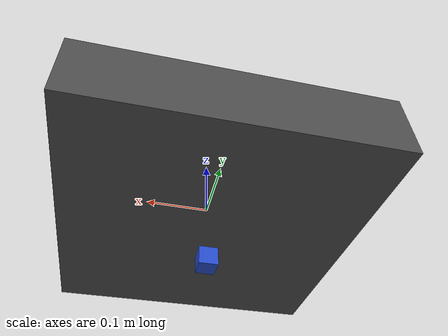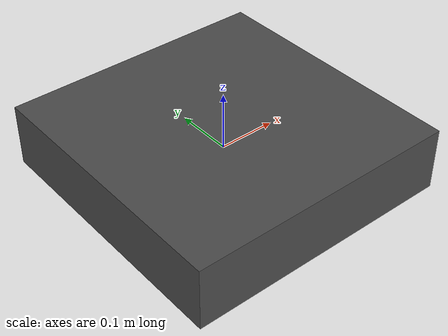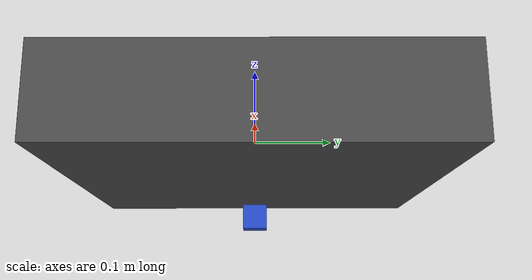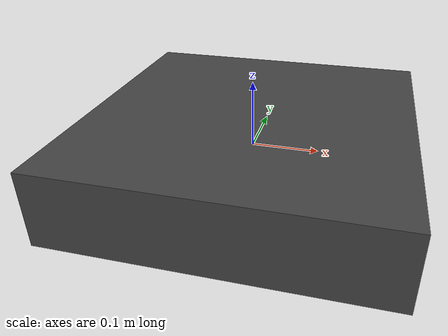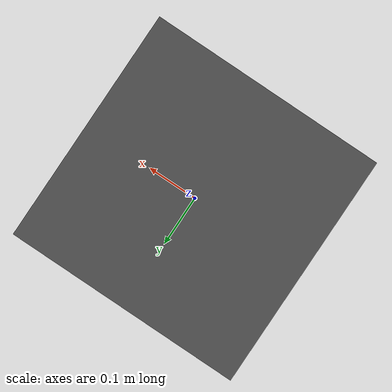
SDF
<?xml version="1.0"?>
<sdf version="1.6">
  <model name="spatial_reasoning_drone">

    <!-- Main quadcopter body -->
    <link name="base_link">
      <pose>0 0 0 0 0 0</pose>
      <inertial>
        <mass>1.5</mass>
        <inertia>
          <ixx>0.0347563</ixx>
          <ixy>0</ixy>
          <ixz>0</ixz>
          <iyy>0.0458929</iyy>
          <iyz>0</iyz>
          <izz>0.0977</izz>
        </inertia>
      </inertial>

      <collision name="collision">
        <geometry>
          <box>
            <size>0.47 0.47 0.11</size>
          </box>
        </geometry>
      </collision>

      <visual name="visual">
        <geometry>
          <box>
            <size>0.47 0.47 0.11</size>
          </box>
        </geometry>
        <material>
          <script>
            <uri>file://media/materials/scripts/gazebo.material</uri>
            <name>Gazebo/DarkGrey</name>
          </script>
        </material>
      </visual>
    </link>

    <!-- Front Camera for Spatial Reasoning -->
    <link name="camera_link">
      <pose>0.2 0 0 0 0 0</pose>
      <inertial>
        <mass>0.1</mass>
        <inertia>
          <ixx>1e-6</ixx>
          <ixy>0</ixy>
          <ixz>0</ixz>
          <iyy>1e-6</iyy>
          <iyz>0</iyz>
          <izz>1e-6</izz>
        </inertia>
      </inertial>

      <collision name="collision">
        <geometry>
          <box>
            <size>0.05 0.05 0.05</size>
          </box>
        </geometry>
      </collision>

      <visual name="visual">
        <geometry>
          <box>
            <size>0.05 0.05 0.05</size>
          </box>
        </geometry>
        <material>
          <script>
            <uri>file://media/materials/scripts/gazebo.material</uri>
            <name>Gazebo/Red</name>
          </script>
        </material>
      </visual>

      <!-- RGB Camera Sensor -->
      <sensor type="camera" name="rgb_camera">
        <update_rate>30.0</update_rate>
        <camera name="head">
          <horizontal_fov>1.3962634</horizontal_fov>
          <image>
            <width>1920</width>
            <height>1080</height>
            <format>R8G8B8</format>
          </image>
          <clip>
            <near>0.02</near>
            <far>300</far>
          </clip>
          <noise>
            <type>gaussian</type>
            <mean>0.0</mean>
            <stddev>0.007</stddev>
          </noise>
        </camera>
        <plugin name="camera_controller" filename="libgazebo_ros_camera.so">
          <alwaysOn>true</alwaysOn>
          <updateRate>0.0</updateRate>
          <cameraName>drone/rgb_camera</cameraName>
          <imageTopicName>image_raw</imageTopicName>
          <cameraInfoTopicName>camera_info</cameraInfoTopicName>
          <frameName>camera_link</frameName>
          <hackBaseline>0.07</hackBaseline>
          <distortionK1>0.0</distortionK1>
          <distortionK2>0.0</distortionK2>
          <distortionK3>0.0</distortionK3>
          <distortionT1>0.0</distortionT1>
          <distortionT2>0.0</distortionT2>
        </plugin>
      </sensor>

      <!-- Depth Camera Sensor -->
      <sensor type="depth" name="depth_camera">
        <update_rate>20.0</update_rate>
        <camera name="depth">
          <horizontal_fov>1.3962634</horizontal_fov>
          <image>
            <width>640</width>
            <height>480</height>
            <format>R8G8B8</format>
          </image>
          <clip>
            <near>0.02</near>
            <far>300</far>
          </clip>
          <noise>
            <type>gaussian</type>
            <mean>0.0</mean>
            <stddev>0.007</stddev>
          </noise>
        </camera>
        <plugin name="depth_camera_controller" filename="libgazebo_ros_openni_kinect.so">
          <baseline>0.2</baseline>
          <alwaysOn>true</alwaysOn>
          <updateRate>0.0</updateRate>
          <cameraName>drone/depth_camera</cameraName>
          <imageTopicName>image_raw</imageTopicName>
          <cameraInfoTopicName>camera_info</cameraInfoTopicName>
          <depthImageTopicName>depth/image_raw</depthImageTopicName>
          <depthImageCameraInfoTopicName>depth/camera_info</depthImageCameraInfoTopicName>
          <pointCloudTopicName>depth/points</pointCloudTopicName>
          <frameName>camera_link</frameName>
          <pointCloudCutoff>0.5</pointCloudCutoff>
          <pointCloudCutoffMax>3.0</pointCloudCutoffMax>
          <distortionK1>0.00000001</distortionK1>
          <distortionK2>0.00000001</distortionK2>
          <distortionK3>0.00000001</distortionK3>
          <distortionT1>0.00000001</distortionT1>
          <distortionT2>0.00000001</distortionT2>
        </plugin>
      </sensor>
    </link>

    <!-- Down-facing Camera for Ground Distance -->
    <link name="down_camera_link">
      <pose>0 0 -0.1 0 1.57 0</pose>
      <inertial>
        <mass>0.05</mass>
        <inertia>
          <ixx>1e-6</ixx>
          <ixy>0</ixy>
          <ixz>0</ixz>
          <iyy>1e-6</iyy>
          <iyz>0</iyz>
          <izz>1e-6</izz>
        </inertia>
      </inertial>

      <collision name="collision">
        <geometry>
          <box>
            <size>0.03 0.03 0.03</size>
          </box>
        </geometry>
      </collision>

      <visual name="visual">
        <geometry>
          <box>
            <size>0.03 0.03 0.03</size>
          </box>
        </geometry>
        <material>
          <script>
            <uri>file://media/materials/scripts/gazebo.material</uri>
            <name>Gazebo/Blue</name>
          </script>
        </material>
      </visual>

      <sensor type="camera" name="down_camera">
        <update_rate>30.0</update_rate>
        <camera name="down">
          <horizontal_fov>1.3962634</horizontal_fov>
          <image>
            <width>640</width>
            <height>480</height>
            <format>R8G8B8</format>
          </image>
          <clip>
            <near>0.02</near>
            <far>300</far>
          </clip>
        </camera>
        <plugin name="down_camera_controller" filename="libgazebo_ros_camera.so">
          <alwaysOn>true</alwaysOn>
          <updateRate>0.0</updateRate>
          <cameraName>drone/down_camera</cameraName>
          <imageTopicName>image_raw</imageTopicName>
          <cameraInfoTopicName>camera_info</cameraInfoTopicName>
          <frameName>down_camera_link</frameName>
        </plugin>
      </sensor>
    </link>

    <!-- IMU Sensor -->
    <link name="imu_link">
      <pose>0 0 0 0 0 0</pose>
      <inertial>
        <mass>0.015</mass>
        <inertia>
          <ixx>1e-6</ixx>
          <ixy>0</ixy>
          <ixz>0</ixz>
          <iyy>1e-6</iyy>
          <iyz>0</iyz>
          <izz>1e-6</izz>
        </inertia>
      </inertial>

      <sensor name="imu_sensor" type="imu">
        <always_on>true</always_on>
        <update_rate>1000</update_rate>
        <visualize>true</visualize>
        <topic>/drone/imu</topic>
        <plugin filename="libgazebo_ros_imu_sensor.so" name="imu_plugin">
          <topicName>/drone/imu</topicName>
          <bodyName>imu_link</bodyName>
          <updateRateHZ>1000.0</updateRateHZ>
          <gaussianNoise>0.0</gaussianNoise>
          <xyzOffset>0 0 0</xyzOffset>
          <rpyOffset>0 0 0</rpyOffset>
          <frameName>imu_link</frameName>
        </plugin>
      </sensor>
    </link>

    <!-- GPS Sensor -->
    <link name="gps_link">
      <pose>0 0 0.1 0 0 0</pose>
      <inertial>
        <mass>0.01</mass>
        <inertia>
          <ixx>1e-6</ixx>
          <ixy>0</ixy>
          <ixz>0</ixz>
          <iyy>1e-6</iyy>
          <iyz>0</iyz>
          <izz>1e-6</izz>
        </inertia>
      </inertial>
    </link>

    <!-- Joints connecting sensors to main body -->
    <joint name="camera_joint" type="fixed">
      <child>camera_link</child>
      <parent>base_link</parent>
    </joint>

    <joint name="down_camera_joint" type="fixed">
      <child>down_camera_link</child>
      <parent>base_link</parent>
    </joint>

    <joint name="imu_joint" type="fixed">
      <child>imu_link</child>
      <parent>base_link</parent>
    </joint>

    <joint name="gps_joint" type="fixed">
      <child>gps_link</child>
      <parent>base_link</parent>
    </joint>

    <!-- Rotor plugins for ArduPilot integration -->
    <plugin name='rotor_0' filename='libgazebo_motor_model.so'>
      <robotNamespace></robotNamespace>
      <jointName>rotor_0_joint</jointName>
      <linkName>rotor_0</linkName>
      <turningDirection>ccw</turningDirection>
      <timeConstantUp>0.0125</timeConstantUp>
      <timeConstantDown>0.025</timeConstantDown>
      <maxRotVelocity>1100</maxRotVelocity>
      <motorConstant>8.54858e-06</motorConstant>
      <momentConstant>0.06</momentConstant>
      <commandSubTopic>/gazebo/command/motor_speed</commandSubTopic>
      <motorNumber>0</motorNumber>
      <rotorDragCoefficient>0.000806428</rotorDragCoefficient>
      <rollingMomentCoefficient>1e-06</rollingMomentCoefficient>
      <motorSpeedPubTopic>/motor_speed/0</motorSpeedPubTopic>
      <rotorVelocitySlowdownSim>10</rotorVelocitySlowdownSim>
    </plugin>

    <!-- ArduPilot SITL Plugin -->
    <plugin name='arducopter_plugin' filename='libArduPilotPlugin.so'>
      <fdm_addr>127.0.0.1</fdm_addr>
      <fdm_port_in>9002</fdm_port_in>
      <fdm_port_out>9003</fdm_port_out>
      <modelXYZToAirplaneXForwardZDown>0 0 0 3.141593 0 0</modelXYZToAirplaneXForwardZDown>
      <gazeboXYZToNED>0 0 0 3.141593 0 0</gazeboXYZToNED>
      <imuName>imu_link</imuName>
      <connectionTimeoutMaxCount>5</connectionTimeoutMaxCount>
      <control channel="0">
        <jointName>rotor_0_joint</jointName>
        <useForce>1</useForce>
        <multiplier>1000</multiplier>
        <offset>-0.2</offset>
      </control>
    </plugin>

  </model>
</sdf>
